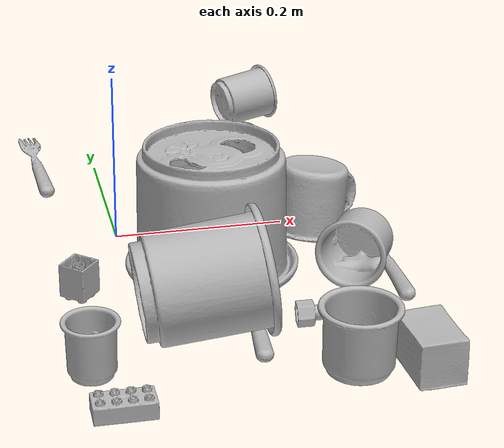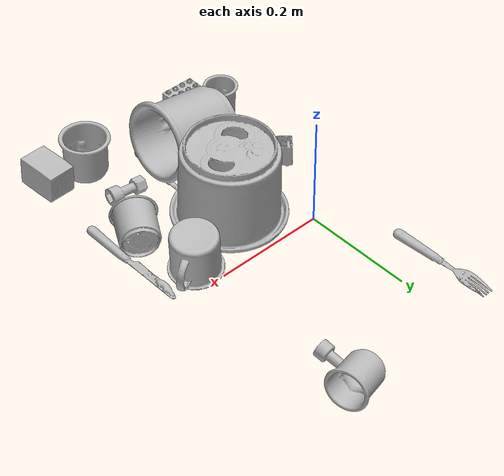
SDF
<sdf version="1.4">
  <world name="default">
    <light name="light1" type="point">
      <pose>0 0 1 0 0 0</pose>
      <diffuse>3 3 3 1</diffuse>
      <specular>3 3 3 1</specular>
    </light>
    <light name="light2" type="point">
      <pose>0 0.5 2 0 0 0</pose>
      <diffuse>1 1 1 1</diffuse>
      <specular>1 1 1 1</specular>
    </light>
    <light name="light3" type="point">
      <pose>0 0.5 2 0 0 0</pose>
      <diffuse>3 3 3 1</diffuse>
      <specular>3 3 3 1</specular>
    </light>
    <scene>
      <ambient>0.7 0.7 0.7</ambient>
    </scene>
    <model name="cup1">
      <link name="link_cup1">
        <collision name="default">
          <geometry>
            <mesh>
              <uri>model://e_cups/collision_meshes/collision.obj</uri>
              <scale>1.0 1.0 1.0</scale>
            </mesh>
          </geometry>
          <surface>
            <friction>
              <ode>
                <mu>0.5</mu>
                <mu2>0.5</mu2>
              </ode>
            </friction>
          <contact>
        <ode>
            <max_vel>0</max_vel>
            <min_depth>0.0001</min_depth>
            <kp>1e8</kp>
        </ode>
    </contact></surface>
        </collision>
        <visual name="default">
          <geometry>
            <mesh>
              <uri>model://e_cups/visual_meshes/visual.dae</uri>
              <scale>1.0 1.0 1.0</scale>
            </mesh>
          </geometry>
        </visual>
        <inertial>
          <mass>0.07679437845945358</mass>
          <pose>0.001135574304498732 0.002879783743992448 -0.0038829718250781298 0.6952411595659588 0.08767733322521654 -0.5235244631248706</pose>
          <inertia>
            <ixx>6.771342e-05</ixx>
            <iyy>7.077022e-05</iyy>
            <izz>6.4741864e-05</izz>
            <ixy>0</ixy>
            <ixz>0</ixz>
            <iyz>0</iyz>
          </inertia>
        </inertial>
      </link>
      <pose>0.2245827317237854 0.32343876361846924 0.034922655671834946 -1.4793270129832787 0.1848342858660949 -1.2851987964624634</pose>
    </model>
    <model name="silverware1">
      <link name="link_silverware1">
        <collision name="default">
          <geometry>
            <mesh>
              <uri>model://spoon/collision_meshes/collision.obj</uri>
              <scale>1.0 1.0 1.0</scale>
            </mesh>
          </geometry>
          <surface>
            <friction>
              <ode>
                <mu>0.5</mu>
                <mu2>0.5</mu2>
              </ode>
            </friction>
          <contact>
        <ode>
            <max_vel>0</max_vel>
            <min_depth>0.0001</min_depth>
            <kp>1e8</kp>
        </ode>
    </contact></surface>
        </collision>
        <visual name="default">
          <geometry>
            <mesh>
              <uri>model://spoon/visual_meshes/visual.dae</uri>
              <scale>1.0 1.0 1.0</scale>
            </mesh>
          </geometry>
        </visual>
        <inertial>
          <mass>0.015083584003150463</mass>
          <pose>-0.005526313092559576 -0.001603418029844761 -0.000727165665011853 0.035216710638299134 -0.03906584880684835 0.006150613179751253</pose>
          <inertia>
            <ixx>8.389734e-07</ixx>
            <iyy>5.739254e-05</iyy>
            <izz>5.7806283e-05</izz>
            <ixy>0</ixy>
            <ixz>0</ixz>
            <iyz>0</iyz>
          </inertia>
        </inertial>
      </link>
      <pose>0.11477548629045486 -0.2235819399356842 0.00840366818010807 0.0007899819799679533 0.026219907591768447 1.4633223456006075</pose>
    </model>
    <model name="cup2">
      <link name="link_cup2">
        <collision name="default">
          <geometry>
            <mesh>
              <uri>model://g_cups/collision_meshes/collision.obj</uri>
              <scale>1.0 1.0 1.0</scale>
            </mesh>
          </geometry>
          <surface>
            <friction>
              <ode>
                <mu>0.5</mu>
                <mu2>0.5</mu2>
              </ode>
            </friction>
          <contact>
        <ode>
            <max_vel>0</max_vel>
            <min_depth>0.0001</min_depth>
            <kp>1e8</kp>
        </ode>
    </contact></surface>
        </collision>
        <visual name="default">
          <geometry>
            <mesh>
              <uri>model://g_cups/visual_meshes/visual.dae</uri>
              <scale>1.0 1.0 1.0</scale>
            </mesh>
          </geometry>
        </visual>
        <inertial>
          <mass>0.04187431186437607</mass>
          <pose>-0.0007946277037262917 -4.2064348235726357e-05 -0.0021329382434487343 -0.21382305588888167 -0.31410659578681893 0.31120215507532384</pose>
          <inertia>
            <ixx>4.8876722e-05</ixx>
            <iyy>4.871046e-05</iyy>
            <izz>5.0627856e-05</izz>
            <ixy>0</ixy>
            <ixz>0</ixz>
            <iyz>0</iyz>
          </inertia>
        </inertial>
      </link>
      <pose>0.19712825119495392 -0.3461947441101074 0.03720300644636154 -1.4443951156343056e-07 1.948821125576451e-07 -2.9333415224925488</pose>
    </model>
    <model name="silverware2">
      <link name="link_silverware2">
        <collision name="default">
          <geometry>
            <mesh>
              <uri>model://fork/collision_meshes/collision.obj</uri>
              <scale>1.0 1.0 1.0</scale>
            </mesh>
          </geometry>
          <surface>
            <friction>
              <ode>
                <mu>0.5</mu>
                <mu2>0.5</mu2>
              </ode>
            </friction>
          <contact>
        <ode>
            <max_vel>0</max_vel>
            <min_depth>0.0001</min_depth>
            <kp>1e8</kp>
        </ode>
    </contact></surface>
        </collision>
        <visual name="default">
          <geometry>
            <mesh>
              <uri>model://fork/visual_meshes/visual.dae</uri>
              <scale>1.0 1.0 1.0</scale>
            </mesh>
          </geometry>
        </visual>
        <inertial>
          <mass>0.025364622473716736</mass>
          <pose>-0.029570050537586212 0.00046588227269239724 0.00032188615296036005 -0.013551666838441594 -0.010977837199147297 0.014453899745261501</pose>
          <inertia>
            <ixx>8.8917335e-07</ixx>
            <iyy>6.621973e-05</iyy>
            <izz>6.661743e-05</izz>
            <ixy>0</ixy>
            <ixz>0</ixz>
            <iyz>0</iyz>
          </inertia>
        </inertial>
      </link>
      <pose>-0.07381761819124222 0.21514026820659637 0.007446586154401302 -3.0635086001405343 0.0028363089337482624 1.6212306184472391</pose>
    </model>
    <model name="cup3">
      <link name="link_cup3">
        <collision name="default">
          <geometry>
            <mesh>
              <uri>model://f_cups/collision_meshes/collision.obj</uri>
              <scale>1.0 1.0 1.0</scale>
            </mesh>
          </geometry>
          <surface>
            <friction>
              <ode>
                <mu>0.5</mu>
                <mu2>0.5</mu2>
              </ode>
            </friction>
          <contact>
        <ode>
            <max_vel>0</max_vel>
            <min_depth>0.0001</min_depth>
            <kp>1e8</kp>
        </ode>
    </contact></surface>
        </collision>
        <visual name="default">
          <geometry>
            <mesh>
              <uri>model://f_cups/visual_meshes/visual.dae</uri>
              <scale>1.0 1.0 1.0</scale>
            </mesh>
          </geometry>
        </visual>
        <inertial>
          <mass>0.08338716626167297</mass>
          <pose>-0.0031714679207652807 -0.0006240069633349776 -0.003655536798760295 0.7862348245142414 -0.2607950949044878 -0.18237232658982702</pose>
          <inertia>
            <ixx>7.838616e-05</ixx>
            <iyy>8.222797e-05</iyy>
            <izz>8.560161e-05</izz>
            <ixy>0</ixy>
            <ixz>0</ixz>
            <iyz>0</iyz>
          </inertia>
        </inertial>
      </link>
      <pose>0.2529071271419525 -0.14799603819847107 0.037311311811208725 -0.9458471572290509 -1.4169354026903893 1.9936839805564839</pose>
    </model>
    <model name="silverware3">
      <link name="link_silverware3">
        <collision name="default">
          <geometry>
            <mesh>
              <uri>model://knife/collision_meshes/collision.obj</uri>
              <scale>1.0 1.0 1.0</scale>
            </mesh>
          </geometry>
          <surface>
            <friction>
              <ode>
                <mu>0.5</mu>
                <mu2>0.5</mu2>
              </ode>
            </friction>
          <contact>
        <ode>
            <max_vel>0</max_vel>
            <min_depth>0.0001</min_depth>
            <kp>1e8</kp>
        </ode>
    </contact></surface>
        </collision>
        <visual name="default">
          <geometry>
            <mesh>
              <uri>model://knife/visual_meshes/visual.dae</uri>
              <scale>1.0 1.0 1.0</scale>
            </mesh>
          </geometry>
        </visual>
        <inertial>
          <mass>0.015509607270359993</mass>
          <pose>-0.02378525398671627 0.0015275129117071629 5.0620248657651246e-05 0.07305981518176793 0.01724841487141605 -0.0074098192082968535</pose>
          <inertia>
            <ixx>4.4022548e-07</ixx>
            <iyy>5.95854e-05</iyy>
            <izz>5.9727172e-05</izz>
            <ixy>0</ixy>
            <ixz>0</ixz>
            <iyz>0</iyz>
          </inertia>
        </inertial>
      </link>
      <pose>0.2893136441707611 -0.11876381188631058 0.005811066832393408 2.8896086317126453 0.02592688840225013 1.570569915051977</pose>
    </model>
    <model name="cup4">
      <link name="link_cup4">
        <collision name="default">
          <geometry>
            <mesh>
              <uri>model://d_cups/collision_meshes/collision.obj</uri>
              <scale>2.0 2.0 2.0</scale>
            </mesh>
          </geometry>
          <surface>
            <friction>
              <ode>
                <mu>0.5</mu>
                <mu2>0.5</mu2>
              </ode>
            </friction>
          <contact>
        <ode>
            <max_vel>0</max_vel>
            <min_depth>0.0001</min_depth>
            <kp>1e8</kp>
        </ode>
    </contact></surface>
        </collision>
        <visual name="default">
          <geometry>
            <mesh>
              <uri>model://d_cups/visual_meshes/visual.dae</uri>
              <scale>2.0 2.0 2.0</scale>
            </mesh>
          </geometry>
        </visual>
        <inertial>
          <mass>0.5481204390525818</mass>
          <pose>0.001613611588254571 0.0038234798703342676 -0.0045333015732467175 0.2401214667218237 -0.2470996070340832 0.5942599316130982</pose>
          <inertia>
            <ixx>0.001835623</ixx>
            <iyy>0.0018303102</iyy>
            <izz>0.0016615508</izz>
            <ixy>0</ixy>
            <ixz>0</ixz>
            <iyz>0</iyz>
          </inertia>
        </inertial>
      </link>
      <pose>0.054679639637470245 -0.2515747547149658 0.06635100394487381 -1.1075450871308792 1.2892976693351705 -1.1483305091385445</pose>
    </model>
    <model name="cup41">
      <link name="link_cup41">
        <collision name="default">
          <geometry>
            <mesh>
              <uri>model://b_cups/collision_meshes/collision.obj</uri>
              <scale>1.0 1.0 1.0</scale>
            </mesh>
          </geometry>
          <surface>
            <friction>
              <ode>
                <mu>0.5</mu>
                <mu2>0.5</mu2>
              </ode>
            </friction>
          <contact>
        <ode>
            <max_vel>0</max_vel>
            <min_depth>0.0001</min_depth>
            <kp>1e8</kp>
        </ode>
    </contact></surface>
        </collision>
        <visual name="default">
          <geometry>
            <mesh>
              <uri>model://b_cups/visual_meshes/visual.dae</uri>
              <scale>1.0 1.0 1.0</scale>
            </mesh>
          </geometry>
        </visual>
        <inertial>
          <mass>0.04462150111794472</mass>
          <pose>0.0005182005697861314 0.0018058601999655366 -0.0013381819007918239 0.11356336410280554 0.038725039404113405 -0.3456939711537357</pose>
          <inertia>
            <ixx>2.9207904e-05</ixx>
            <iyy>2.8653376e-05</iyy>
            <izz>2.45779e-05</izz>
            <ixy>0</ixy>
            <ixz>0</ixz>
            <iyz>0</iyz>
          </inertia>
        </inertial>
      </link>
      <pose>-0.0691339299082756 -0.3050769865512848 0.03199610114097595 -0.007641686579707982 -0.0038037499154081806 1.2039653318390233</pose>
    </model>
    <model name="cup5">
      <link name="link_cup5">
        <collision name="default">
          <geometry>
            <mesh>
              <uri>model://i_cups/collision_meshes/collision.obj</uri>
              <scale>2.0 2.0 2.0</scale>
            </mesh>
          </geometry>
          <surface>
            <friction>
              <ode>
                <mu>0.5</mu>
                <mu2>0.5</mu2>
              </ode>
            </friction>
          <contact>
        <ode>
            <max_vel>0</max_vel>
            <min_depth>0.0001</min_depth>
            <kp>1e8</kp>
        </ode>
    </contact></surface>
        </collision>
        <visual name="default">
          <geometry>
            <mesh>
              <uri>model://i_cups/visual_meshes/visual.dae</uri>
              <scale>2.0 2.0 2.0</scale>
            </mesh>
          </geometry>
        </visual>
        <inertial>
          <mass>0.7183689475059509</mass>
          <pose>0.00022480347251985222 0.0003359461552463472 -0.0017158043337985873 -0.028983189607302198 -0.03987301698166741 -0.34590760218104494</pose>
          <inertia>
            <ixx>0.0039783698</ixx>
            <iyy>0.004013422</iyy>
            <izz>0.0044464725</izz>
            <ixy>0</ixy>
            <ixz>0</ixz>
            <iyz>0</iyz>
          </inertia>
        </inertial>
      </link>
      <pose>0.0946730375289917 -0.1003357544541359 0.07824177294969559 3.122219366561168 0.016619925829347855 0.856257541044621</pose>
    </model>
    <model name="cup51">
      <link name="link_cup51">
        <collision name="default">
          <geometry>
            <mesh>
              <uri>model://mug/collision_meshes/collision.obj</uri>
              <scale>1.0 1.0 1.0</scale>
            </mesh>
          </geometry>
          <surface>
            <friction>
              <ode>
                <mu>0.5</mu>
                <mu2>0.5</mu2>
              </ode>
            </friction>
          <contact>
        <ode>
            <max_vel>0</max_vel>
            <min_depth>0.0001</min_depth>
            <kp>1e8</kp>
        </ode>
    </contact></surface>
        </collision>
        <visual name="default">
          <geometry>
            <mesh>
              <uri>model://mug/visual_meshes/visual.dae</uri>
              <scale>1.0 1.0 1.0</scale>
            </mesh>
          </geometry>
        </visual>
        <inertial>
          <mass>0.1239403635263443</mass>
          <pose>0.009571672417223454 0.0008143244776874781 -0.01094733364880085 -0.12983126758676797 0.08737752450174939 0.055073145905888306</pose>
          <inertia>
            <ixx>0.0001231125</ixx>
            <iyy>0.00013750937</iyy>
            <izz>0.00015903146</izz>
            <ixy>0</ixy>
            <ixz>0</ixz>
            <iyz>0</iyz>
          </inertia>
        </inertial>
      </link>
      <pose>0.23865333199501038 -0.03082827478647232 0.04536083713173866 -3.1216676375681387 -0.1443809774288029 -2.640227681426993</pose>
    </model>
    <model name="toy1">
      <link name="link_toy1">
        <collision name="default">
          <geometry>
            <mesh>
              <uri>model://e_toy_airplane/collision_meshes/collision.obj</uri>
              <scale>1.0 1.0 1.0</scale>
            </mesh>
          </geometry>
          <surface>
            <friction>
              <ode>
                <mu>0.5</mu>
                <mu2>0.5</mu2>
              </ode>
            </friction>
          <contact>
        <ode>
            <max_vel>0</max_vel>
            <min_depth>0.0001</min_depth>
            <kp>1e8</kp>
        </ode>
    </contact></surface>
        </collision>
        <visual name="default">
          <geometry>
            <mesh>
              <uri>model://e_toy_airplane/visual_meshes/visual.dae</uri>
              <scale>1.0 1.0 1.0</scale>
            </mesh>
          </geometry>
        </visual>
        <inertial>
          <mass>0.022831259295344353</mass>
          <pose>0.00011740475019905716 -2.2482799977296963e-05 -0.011187204159796238 0.005518483498250157 0.009228324176637706 0.15041338923558414</pose>
          <inertia>
            <ixx>6.9683606e-06</ixx>
            <iyy>6.897077e-06</iyy>
            <izz>2.0942666e-06</izz>
            <ixy>0</ixy>
            <ixz>0</ixz>
            <iyz>0</iyz>
          </inertia>
        </inertial>
      </link>
      <pose>0.20598724484443665 0.25963813066482544 0.010332560166716576 2.425728356257765 -1.1978153753253538 2.4557473837206407</pose>
    </model>
    <model name="toy2">
      <link name="link_toy2">
        <collision name="default">
          <geometry>
            <mesh>
              <uri>model://c_toy_airplane/collision_meshes/collision.obj</uri>
              <scale>1.0 1.0 1.0</scale>
            </mesh>
          </geometry>
          <surface>
            <friction>
              <ode>
                <mu>0.5</mu>
                <mu2>0.5</mu2>
              </ode>
            </friction>
          <contact>
        <ode>
            <max_vel>0</max_vel>
            <min_depth>0.0001</min_depth>
            <kp>1e8</kp>
        </ode>
    </contact></surface>
        </collision>
        <visual name="default">
          <geometry>
            <mesh>
              <uri>model://c_toy_airplane/visual_meshes/visual.dae</uri>
              <scale>1.0 1.0 1.0</scale>
            </mesh>
          </geometry>
        </visual>
        <inertial>
          <mass>0.014964861795306206</mass>
          <pose>-0.00023024252732284367 -4.4292315237726143e-07 -0.006080531980842352 -0.006193085961310731 -0.016797608001683555 0.7655123908688324</pose>
          <inertia>
            <ixx>6.871557e-06</ixx>
            <iyy>6.852165e-06</iyy>
            <izz>1.6133057e-06</izz>
            <ixy>0</ixy>
            <ixz>0</ixz>
            <iyz>0</iyz>
          </inertia>
        </inertial>
      </link>
      <pose>0.19040098786354065 -0.24971555173397064 0.014215901494026184 -1.7881743200269116 1.3248653591793005 1.2660956199236881</pose>
    </model>
    <model name="toy3">
      <link name="link_toy3">
        <collision name="default">
          <geometry>
            <mesh>
              <uri>model://c_lego_duplo/collision_meshes/collision.obj</uri>
              <scale>1.0 1.0 1.0</scale>
            </mesh>
          </geometry>
          <surface>
            <friction>
              <ode>
                <mu>0.5</mu>
                <mu2>0.5</mu2>
              </ode>
            </friction>
          <contact>
        <ode>
            <max_vel>0</max_vel>
            <min_depth>0.0001</min_depth>
            <kp>1e8</kp>
        </ode>
    </contact></surface>
        </collision>
        <visual name="default">
          <geometry>
            <mesh>
              <uri>model://c_lego_duplo/visual_meshes/visual.dae</uri>
              <scale>1.0 1.0 1.0</scale>
            </mesh>
          </geometry>
        </visual>
        <inertial>
          <mass>0.043811071664094925</mass>
          <pose>0.00031645968556404114 0.00019464633078314364 0.0010453150607645512 -0.011520790971684333 0.005900079198968262 0.031100329952374963</pose>
          <inertia>
            <ixx>1.685932e-05</ixx>
            <iyy>5.3854724e-06</iyy>
            <izz>1.970185e-05</izz>
            <ixy>0</ixy>
            <ixz>0</ixz>
            <iyz>0</iyz>
          </inertia>
        </inertial>
      </link>
      <pose>-0.04843695089221001 -0.3820691704750061 0.011981488205492496 0.008019326781491485 -0.0020916124010391572 -1.6046111213612175</pose>
    </model>
    <model name="toy4">
      <link name="link_toy4">
        <collision name="default">
          <geometry>
            <mesh>
              <uri>model://foam_brick/collision_meshes/collision.obj</uri>
              <scale>1.0 1.0 1.0</scale>
            </mesh>
          </geometry>
          <surface>
            <friction>
              <ode>
                <mu>0.5</mu>
                <mu2>0.5</mu2>
              </ode>
            </friction>
          <contact>
        <ode>
            <max_vel>0</max_vel>
            <min_depth>0.0001</min_depth>
            <kp>1e8</kp>
        </ode>
    </contact></surface>
        </collision>
        <visual name="default">
          <geometry>
            <mesh>
              <uri>model://foam_brick/visual_meshes/visual.dae</uri>
              <scale>1.0 1.0 1.0</scale>
            </mesh>
          </geometry>
        </visual>
        <inertial>
          <mass>0.278400182723999</mass>
          <pose>-0.0002522472059354186 0.00034584358218126 -0.0002532101352699101 -0.2940175595239471 0.01727444673583901 -0.0007449899720057078</pose>
          <inertia>
            <ixx>0.00012161039</ixx>
            <iyy>0.00019415727</iyy>
            <izz>0.00019662478</izz>
            <ixy>0</ixy>
            <ixz>0</ixz>
            <iyz>0</iyz>
          </inertia>
        </inertial>
      </link>
      <pose>0.26762789487838745 -0.3600838780403137 0.02549685165286064 3.1325084476479645 0.0066072481059932025 1.617689916903318</pose>
    </model>
    <model name="toy5">
      <link name="link_toy5">
        <collision name="default">
          <geometry>
            <mesh>
              <uri>model://f_lego_duplo/collision_meshes/collision.obj</uri>
              <scale>1.0 1.0 1.0</scale>
            </mesh>
          </geometry>
          <surface>
            <friction>
              <ode>
                <mu>0.5</mu>
                <mu2>0.5</mu2>
              </ode>
            </friction>
          <contact>
        <ode>
            <max_vel>0</max_vel>
            <min_depth>0.0001</min_depth>
            <kp>1e8</kp>
        </ode>
    </contact></surface>
        </collision>
        <visual name="default">
          <geometry>
            <mesh>
              <uri>model://f_lego_duplo/visual_meshes/visual.dae</uri>
              <scale>1.0 1.0 1.0</scale>
            </mesh>
          </geometry>
        </visual>
        <inertial>
          <mass>0.033785246312618256</mass>
          <pose>2.369392132095527e-05 0.00013393175322562456 0.0018837875686585903 0.029838526741840128 -0.014425189077584645 -0.6756601169838921</pose>
          <inertia>
            <ixx>7.139008e-06</ixx>
            <iyy>7.202609e-06</iyy>
            <izz>6.1969613e-06</izz>
            <ixy>0</ixy>
            <ixz>0</ixz>
            <iyz>0</iyz>
          </inertia>
        </inertial>
      </link>
      <pose>-0.06132872775197029 -0.14033028483390808 0.021870940923690796 3.141579308803942 6.9629728597426725e-06 2.432482935883957</pose>
    </model>
  <physics type="ode">
      <max_contacts>50</max_contacts>
      <ode>
        <solver>
          <type>quick</type>
          <iters>75</iters>
        </solver>
        <constraints>
          <contact_max_correcting_vel>0</contact_max_correcting_vel>
          <contact_surface_layer>0</contact_surface_layer>
        </constraints>
      </ode>
    </physics></world>
</sdf>
